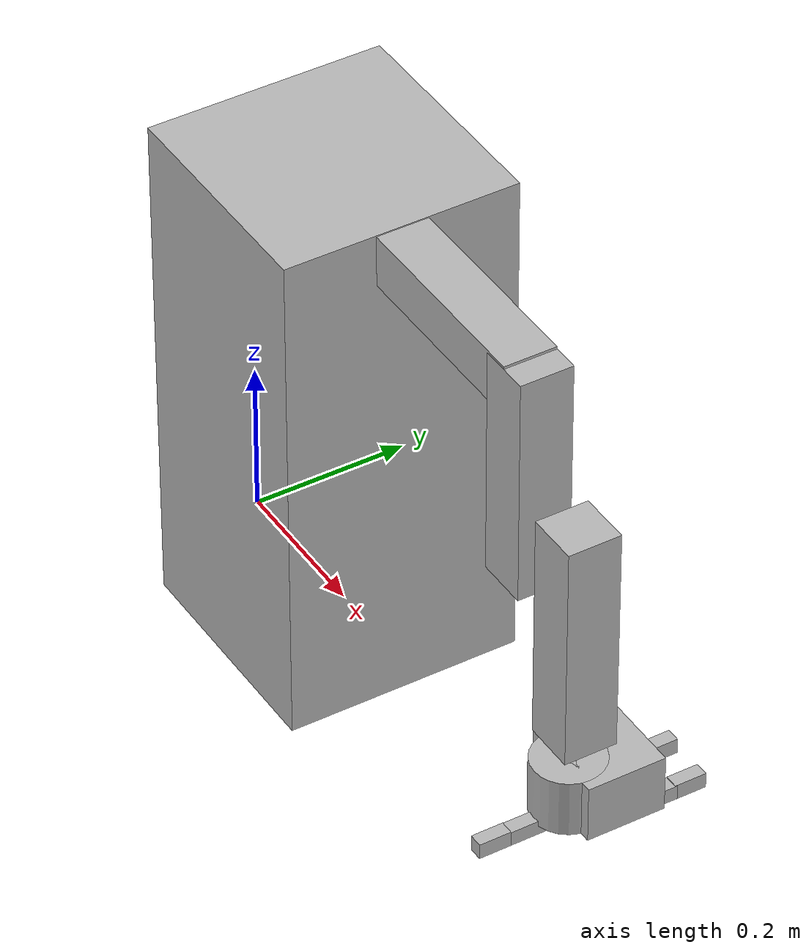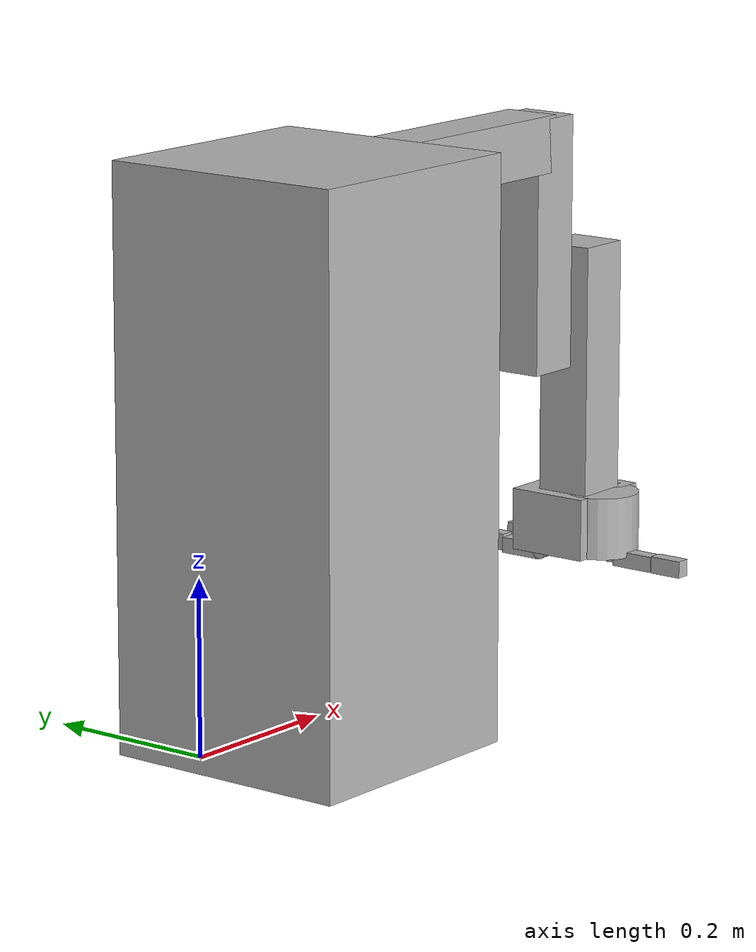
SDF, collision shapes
<?xml version="1.0" ?>
<sdf version="1.4">
  <model name="simple_manipulator5">

    <include>
      <uri>model://riser</uri>
      <pose>0.7 0 0.017 0 0 0</pose>
    </include>

    <include>
      <uri>model://my_simple_arm</uri>
      <pose>0 0 0 0 0 0</pose>
    </include>

    <include>
      <uri>model://irobot_hand</uri>
      <pose>0.72 0.00 0.17 0 3.1416 0</pose>
    </include>

    <joint name="forearm_arm_joint" type="prismatic">
      <parent>simple_arm::forearm</parent>
      <child>riser::arm</child>
      <axis>
                <limit>
                    <lower>0</lower>
                    <upper>0.3</upper>
                </limit>
                <xyz>0 0 1</xyz>
            </axis>
    </joint>

    <joint name="riser_gripper_joint" type="fixed">
      <parent>riser::arm</parent>
      <child>irobot_hand::base_link</child>
    </joint>

  </model>
</sdf>

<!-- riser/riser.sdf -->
<sdf version="1.4">
    <model name="riser">
        <link name="arm">
            <pose>0.0 0.0 0.3 0 0 0</pose>
            <inertial>
                <pose>0 0 -0.17 0 0 0</pose>
                <inertia>
                    <ixx>0.01</ixx>
                    <ixy>0</ixy>
                    <ixz>0</ixz>
                    <iyy>0.01</iyy>
                    <iyz>0</iyz>
                    <izz>0.01</izz>
                </inertia>
                <mass>10.0</mass>
            </inertial>
            <collision name="collision">
                <geometry>
                    <box>
                        <size>0.067 0.067 0.3</size>
                    </box>
                </geometry>
            </collision>
            <visual name="visual">
                <geometry>
                    <box>
                        <size>0.067 0.067 0.3</size>
                    </box>
                </geometry>
                <material>
                    <script>Gazebo/Purple</script>
                </material>
            </visual>
        </link>
  </model>
 </sdf>

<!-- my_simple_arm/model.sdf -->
<sdf version='1.5'>
  <model name="simple_arm">
    <link name='base'>
      <pose>0.187 0 0.3 0 0 0</pose>

      <inertial>
        <mass>1000.0</mass>
        <pose>-0.03 0 -0.03 0 0 0</pose>
        <inertia>
          <ixx>0.5</ixx>
          <iyy>1.0</iyy>
          <izz>0.1</izz>
        </inertia>
      </inertial>

      <collision name='collision'>
        <geometry>
          <box>
            <size>0.3 0.3 0.67</size>
          </box>
        </geometry>
      </collision>

      <visual name='visual'>
        <geometry>
          <box>
            <size>0.3 0.3 0.67</size>
          </box>
        </geometry>
      </visual>
    </link>
    <link name='arm'>
      <pose>0.45 0 0.6 0 0 0</pose>

      <inertial>
        <mass>0.5</mass>
        <pose>-0.03 0 -0.03 0 0 0</pose>
        <inertia>
          <ixx>0.5</ixx>
          <iyy>1.0</iyy>
          <izz>0.1</izz>
        </inertia>
      </inertial>

      <collision name='collision'>
        <geometry>
          <box>
            <size>0.3 0.067 0.067</size>
          </box>
        </geometry>
      </collision>

      <visual name='visual'>
        <geometry>
          <box>
            <size>0.3 0.067 0.067</size>
          </box>
        </geometry>
      </visual>
    </link>
    <link name='forearm'>
      <pose>0.6 0 0.48 0 0 0</pose>

      <inertial>
        <mass>0.5</mass>
        <pose>-0.03 0 -0.03 0 0 0</pose>
        <inertia>
          <ixx>0.5</ixx>
          <iyy>1.0</iyy>
          <izz>0.1</izz>
        </inertia>
      </inertial>

      <collision name='collision'>
        <geometry>
          <box>
            <size>0.067 0.067 0.3</size>
          </box>
        </geometry>
      </collision>

      <visual name='visual'>
        <geometry>
          <box>
            <size>0.067 0.067 0.3</size>
          </box>
        </geometry>
      </visual>
    </link>
    <joint name="arm_base_joint" type="fixed">
      <parent>base</parent>
      <child>arm</child>

    </joint>
     <joint name="forearm_arm_joint" type="fixed">
      <parent>arm</parent>
      <child>forearm</child>

    </joint>
   <static>0</static>
  </model>
 </sdf>

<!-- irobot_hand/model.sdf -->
<sdf version="1.5">
  <model name="irobot_hand">
    <static>false</static>
<link name="base_link">
      <inertial>
        <mass>0.1</mass>
        <inertia>
          <ixx>0.001000</ixx>
          <ixy>0</ixy>
          <ixz>0</ixz>
          <iyy>0.001000</iyy>
          <iyz>0</iyz>
          <izz>0.001000</izz>
        </inertia>
      </inertial>
      <collision name="collision1">
        <pose>0 0.02 0.045 0 0 0</pose>
        <geometry>
          <box>
            <size>0.114 0.1 0.075</size>
          </box>
        </geometry>
      </collision>
      <collision name="collision2">
        <pose>0 -0.02 0.045 0 0 0</pose>
        <geometry>
          <cylinder>
            <radius>0.0448</radius>
            <length>0.075</length>
          </cylinder>
        </geometry>
      </collision>
      <visual name="base_link_vis">
        <pose>0 -0.038000 -0.034000 0 0 0</pose>
        <geometry>
          <mesh>
            <uri>model://irobot_hand/meshes/palm.stl</uri>
          </mesh>
        </geometry>
      </visual>
    </link>
    <link name="finger0/base_rotation_link">
      <pose>0.030750 0.038000 0.069477 0 0 0</pose>
      <inertial>
        <mass>0.1</mass>
        <inertia>
          <ixx>0.001000</ixx>
          <ixy>0</ixy>
          <ixz>0</ixz>
          <iyy>0.001000</iyy>
          <iyz>0</iyz>
          <izz>0.001000</izz>
        </inertia>
      </inertial>
      <collision name="collision_1">
        <pose>0 0 -.0025 0 0 0</pose>
        <geometry>
          <cylinder>
            <length>0.0145</length>
            <radius>0.025</radius>
          </cylinder>
        </geometry>
      </collision>
      <collision name="collision_2">
        <pose>0 0 -.0104 0 0 0</pose>
        <geometry>
          <cylinder>
            <length>0.0145</length>
            <radius>0.0165</radius>
          </cylinder>
        </geometry>
      </collision>
      <collision name="collision_3">
        <pose>0 0 .0135 1.5707 0 1.5707</pose>
        <geometry>
          <cylinder>
            <length>0.02</length>
            <radius>0.002</radius>
          </cylinder>
        </geometry>
      </collision>
      <collision name="collision_4">
        <pose>0.013 0 .0135 1.5707 0 1.5707</pose>
        <geometry>
          <cylinder>
            <length>0.008</length>
            <radius>0.009</radius>
          </cylinder>
        </geometry>
      </collision>
      <collision name="collision_5">
        <pose>-0.013 0 .0135 1.5707 0 1.5707</pose>
        <geometry>
          <cylinder>
            <length>0.008</length>
            <radius>0.009</radius>
          </cylinder>
        </geometry>
      </collision>
      <visual name="finger0/base_rotation_link_vis">
        <pose>0 0 0 1.57 0 0</pose>
        <geometry>
          <mesh>
            <uri>model://irobot_hand/meshes/finger_base.stl</uri>
          </mesh>
        </geometry>
      </visual>
    </link>
    <link name="finger0/proximal_link">
      <pose>0.030750 0.038000 0.082977 1.57 0 -3.140000</pose>
      <inertial>
        <mass>0.1</mass>
        <inertia>
          <ixx>0.001000</ixx>
          <ixy>0</ixy>
          <ixz>0</ixz>
          <iyy>0.001000</iyy>
          <iyz>0</iyz>
          <izz>0.001000</izz>
        </inertia>
      </inertial>
      <collision name="collision1">
        <pose>0 0.0028 0.033 0 0 0</pose>
        <geometry>
          <box>
            <size>0.018 0.019 0.055</size>
          </box>
        </geometry>
      </collision>
      <collision name="collision2">
        <pose>0 0 0 0 1.5707 0</pose>
        <geometry>
          <cylinder>
            <radius>0.009</radius>
            <length>0.018</length>
          </cylinder>
        </geometry>
      </collision>
      <visual name="visual">
        <pose>0 0 0 1.57 -1.57 0</pose>
        <geometry>
          <mesh>
            <uri>model://irobot_hand/meshes/finger_proximal.stl</uri>
          </mesh>
        </geometry>
      </visual>
    </link>

    <link name="finger0/distal_link">
      <pose>0.03026 0.09900 0.08039 1.57 0 -3.140000</pose>
      <inertial>
        <mass>0.1</mass>
        <inertia>
          <ixx>0.001000</ixx>
          <ixy>0</ixy>
          <ixz>0</ixz>
          <iyy>0.001000</iyy>
          <iyz>0</iyz>
          <izz>0.001000</izz>
        </inertia>
      </inertial>
      <collision name="collision">
        <pose>0 0.0025 0.019 3.141590 0.001593 3.141590</pose>
        <geometry>
          <box>
            <size>0.0175 0.02023 0.04043</size>
          </box>
        </geometry>
      </collision>
      <visual name="visual">
        <pose>0 0 0 3.141590 0.001593 3.141590</pose>
        <geometry>
          <mesh>
            <uri>model://irobot_hand/meshes/finger_distal.stl</uri>
          </mesh>
        </geometry>
      </visual>
    </link>

    <link name="finger1/base_rotation_link">
      <pose>-0.030750 0.038000 0.069477 0 0 0</pose>
      <inertial>
        <mass>0.1</mass>
        <inertia>
          <ixx>0.001000</ixx>
          <ixy>0</ixy>
          <ixz>0</ixz>
          <iyy>0.001000</iyy>
          <iyz>0</iyz>
          <izz>0.001000</izz>
        </inertia>
      </inertial>
      <collision name="collision_1">
        <pose>0 0 -.0025 0 0 0</pose>
        <geometry>
          <cylinder>
            <length>0.0145</length>
            <radius>0.025</radius>
          </cylinder>
        </geometry>
      </collision>
      <collision name="collision_2">
        <pose>0 0 -.0104 0 0 0</pose>
        <geometry>
          <cylinder>
            <length>0.0145</length>
            <radius>0.0165</radius>
          </cylinder>
        </geometry>
      </collision>
      <collision name="collision_3">
        <pose>0 0 .0135 1.5707 0 1.5707</pose>
        <geometry>
          <cylinder>
            <length>0.02</length>
            <radius>0.002</radius>
          </cylinder>
        </geometry>
      </collision>
      <collision name="collision_4">
        <pose>0.013 0 .0135 1.5707 0 1.5707</pose>
        <geometry>
          <cylinder>
            <length>0.008</length>
            <radius>0.009</radius>
          </cylinder>
        </geometry>
      </collision>
      <collision name="collision_5">
        <pose>-0.013 0 .0135 1.5707 0 1.5707</pose>
        <geometry>
          <cylinder>
            <length>0.008</length>
            <radius>0.009</radius>
          </cylinder>
        </geometry>
      </collision>
      <visual name="visual">
        <pose>0 0 0 1.57 0 0</pose>
        <geometry>
          <mesh>
            <uri>model://irobot_hand/meshes/finger_base.stl</uri>
          </mesh>
        </geometry>
      </visual>
    </link>

    <link name="finger1/proximal_link">
      <pose>-0.030750 0.038000 0.082977 1.57 0 -3.140000</pose>
      <inertial>
        <mass>0.1</mass>
        <inertia>
          <ixx>0.001000</ixx>
          <ixy>0</ixy>
          <ixz>0</ixz>
          <iyy>0.001000</iyy>
          <iyz>0</iyz>
          <izz>0.001000</izz>
        </inertia>
      </inertial>
      <collision name="collision1">
        <pose>0 0.0028 0.033 0 0 0</pose>
        <geometry>
          <box>
            <size>0.018 0.019 0.055</size>
          </box>
        </geometry>
      </collision>
      <collision name="collision2">
        <pose>0 0 0 0 1.5707 0</pose>
        <geometry>
          <cylinder>
            <radius>0.009</radius>
            <length>0.018</length>
          </cylinder>
        </geometry>
      </collision>
      <visual name="visual">
        <pose>0 0 0 1.57 -1.57 -0</pose>
        <geometry>
          <mesh>
            <uri>model://irobot_hand/meshes/finger_proximal.stl</uri>
          </mesh>
        </geometry>
      </visual>
    </link>

    <link name="finger1/distal_link">
      <pose>-0.030874 0.097000 0.083039 1.57 0 -3.140000</pose>
      <inertial>
        <mass>0.1</mass>
        <inertia>
          <ixx>0.001000</ixx>
          <ixy>0</ixy>
          <ixz>0</ixz>
          <iyy>0.001000</iyy>
          <iyz>0</iyz>
          <izz>0.001000</izz>
        </inertia>
      </inertial>
      <collision name="collision">
        <pose>0 0.0025 0.019 3.141590 0.001593 3.141590</pose>
        <geometry>
          <box>
            <size>0.0175 0.02023 0.04043</size>
          </box>
        </geometry>
      </collision>
      <visual name="visual">
        <pose>0 0 0 3.141590 0.001593 3.141590</pose>
        <geometry>
          <mesh>
            <uri>model://irobot_hand/meshes/finger_distal.stl</uri>
          </mesh>
        </geometry>
      </visual>
    </link>

    <link name="finger2/proximal_link">
      <pose>0 -0.038000 0.082755 1.57 0 0</pose>
      <inertial>
        <mass>0.1</mass>
        <inertia>
          <ixx>0.001000</ixx>
          <ixy>0</ixy>
          <ixz>0</ixz>
          <iyy>0.001000</iyy>
          <iyz>0</iyz>
          <izz>0.001000</izz>
        </inertia>
      </inertial>
      <collision name="collision1">
        <pose>0 0.0028 0.033 0 0 0</pose>
        <geometry>
          <box>
            <size>0.018 0.019 0.055</size>
          </box>
        </geometry>
      </collision>
      <collision name="collision2">
        <pose>0 0 0 0 1.5707 0</pose>
        <geometry>
          <cylinder>
            <radius>0.009</radius>
            <length>0.018</length>
          </cylinder>
        </geometry>
      </collision>
      <visual name="visual">
        <pose>0 0 0 1.57 -1.57 -0</pose>
        <geometry>
          <mesh>
            <uri>model://irobot_hand/meshes/finger_proximal.stl</uri>
          </mesh>
        </geometry>
      </visual>
    </link>

    <link name="finger2/distal_link">
      <pose>0 -0.100000 0.082817 1.57 0 0</pose>
      <inertial>
        <mass>0.1</mass>
        <inertia>
          <ixx>0.001000</ixx>
          <ixy>0</ixy>
          <ixz>0</ixz>
          <iyy>0.001000</iyy>
          <iyz>0</iyz>
          <izz>0.001000</izz>
        </inertia>
      </inertial>
      <collision name="collision">
        <pose>0 0.0025 0.019 3.141590 0.001593 3.141590</pose>
        <geometry>
          <box>
            <size>0.0175 0.02023 0.04043</size>
          </box>
        </geometry>
      </collision>
      <visual name="visual">
        <pose>0 0 0 3.141590 0.001593 3.141590</pose>
        <geometry>
          <mesh>
            <uri>model://irobot_hand/meshes/finger_distal.stl</uri>
          </mesh>
        </geometry>
      </visual>
    </link>

    <joint name="finger0/joint_base_rotation" type="revolute">
      <child>finger0/base_rotation_link</child>
      <parent>base_link</parent>
      <axis>
        <xyz>0 0 -1</xyz>
        <limit>
          <lower>0</lower>
          <upper>0.57</upper>
        </limit>
        <dynamics />
        <use_parent_model_frame>true</use_parent_model_frame>
      </axis>
    </joint>

    <joint name="finger0/joint_base" type="revolute">
      <child>finger0/proximal_link</child>
      <parent>finger0/base_rotation_link</parent>
      <axis>
        <xyz>0.999999 0.001593 -0</xyz>
        <limit>
          <lower>0</lower>
          <upper>1.77</upper>
        </limit>
        <dynamics />
        <use_parent_model_frame>true</use_parent_model_frame>
      </axis>
    </joint>

    <joint name="finger0/joint_tip" type="revolute">
      <child>finger0/distal_link</child>
      <parent>finger0/proximal_link</parent>
      <axis>
        <xyz>0.999999 0.001593 -0</xyz>
        <limit>
          <lower>0</lower>
          <upper>0.57</upper>
        </limit>
        <dynamics />
        <use_parent_model_frame>true</use_parent_model_frame>
      </axis>
    </joint>

    <joint name="finger1/joint_base_rotation" type="revolute">
      <child>finger1/base_rotation_link</child>
      <parent>base_link</parent>
      <axis>
        <xyz>0 0 1</xyz>
        <limit>
          <lower>0</lower>
          <upper>0.57</upper>
        </limit>
        <dynamics />
        <use_parent_model_frame>true</use_parent_model_frame>
      </axis>
    </joint>
    <joint name="finger1/joint_base" type="revolute">
      <child>finger1/proximal_link</child>
      <parent>finger1/base_rotation_link</parent>
      <axis>
        <xyz>0.999999 0.001593 -0</xyz>
        <limit>
          <lower>0</lower>
          <upper>1.77</upper>
        </limit>
        <dynamics />
        <use_parent_model_frame>true</use_parent_model_frame>
      </axis>
    </joint>

     <joint name="finger1/joint_tip" type="revolute">
      <child>finger1/distal_link</child>
      <parent>finger1/proximal_link</parent>
      <axis>
        <xyz>0.999999 0.001593 -0</xyz>
        <limit>
          <lower>0</lower>
          <upper>0.97</upper>
        </limit>
        <dynamics />
        <use_parent_model_frame>true</use_parent_model_frame>
      </axis>
    </joint>

    <joint name="finger2/joint_base" type="revolute">
      <child>finger2/proximal_link</child>
      <parent>base_link</parent>
      <axis>
        <xyz>-1 0 0</xyz>
        <limit>
          <lower>0</lower>
          <upper>1.45</upper>
        </limit>
        <dynamics />
        <use_parent_model_frame>true</use_parent_model_frame>
      </axis>
    </joint>

     <joint name="finger2/joint_tip" type="revolute">
      <child>finger2/distal_link</child>
      <parent>finger2/proximal_link</parent>
      <axis>
        <xyz>0.999999 0.001593 -0</xyz>
        <limit>
          <lower>-1.15</lower>
          <upper>0</upper>
        </limit>
        <dynamics />
        <use_parent_model_frame>true</use_parent_model_frame>
      </axis>
    </joint>

  </model>
</sdf>
